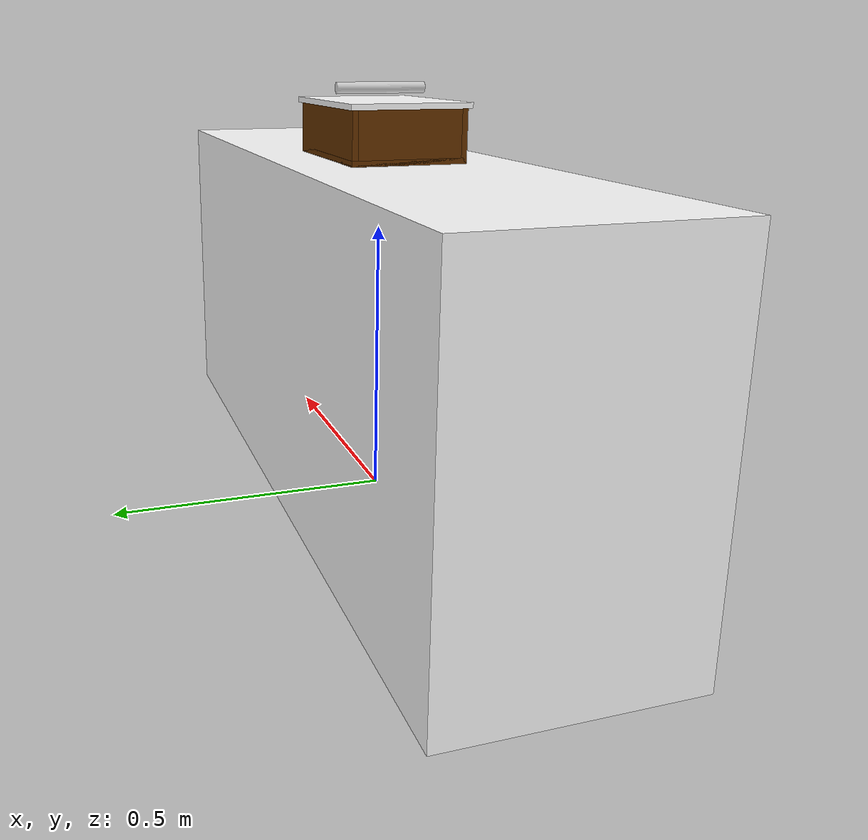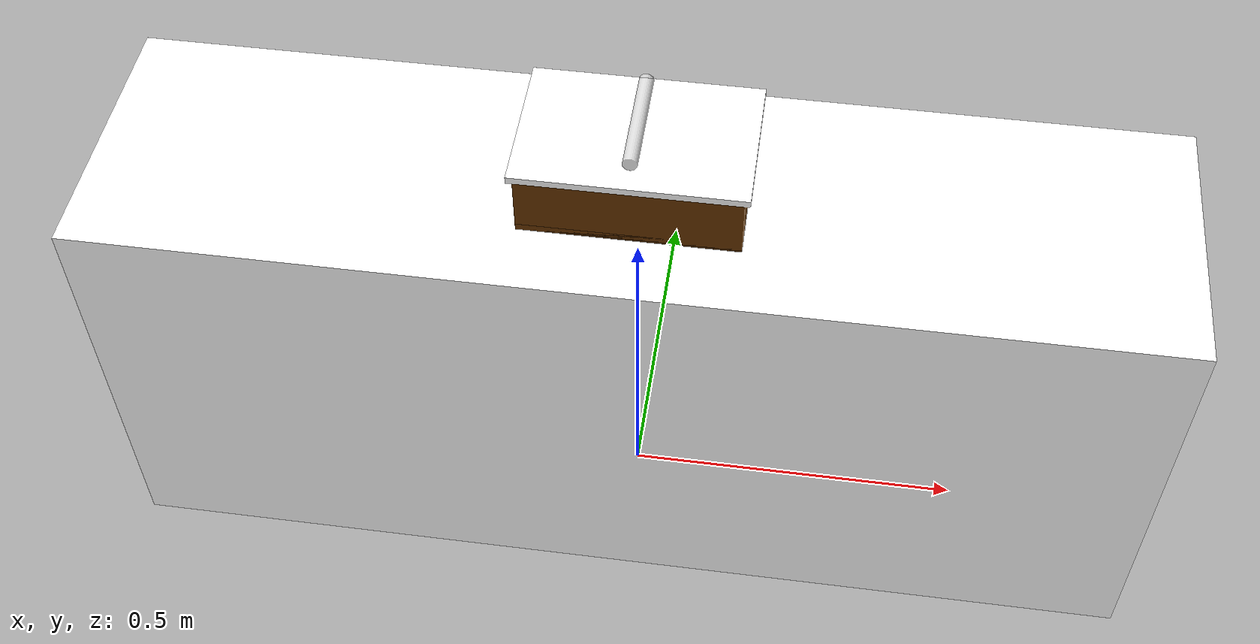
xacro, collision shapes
<?xml version="1.0"?>
<robot xmlns:xacro="http://www.ros.org/wiki/xacro" name="container_no_lid">

<xacro:include filename="container_common.xacro"/>

<link name="base_link">
  <inertial>
    <origin rpy="0 0 0" xyz="0 0 0"/>
    <mass value="0.0"/>
    <inertia ixx="1" ixy="0" ixz="0" iyy="1" iyz="0" izz="1"/>
  </inertial>
</link>

<link name="table_link">
  <contact>
    <lateral_friction value="1.0"/>
  </contact>
  <inertial>
    <origin rpy="0 0 0" xyz="0 0 0"/>
    <mass value="10.0"/>
    <inertia ixx="1" ixy="0" ixz="0" iyy="1" iyz="0" izz="1"/>
  </inertial>
  <visual>
    <origin rpy="0 0 0" xyz="0 0 0.6"/>
    <geometry>
      <mesh filename="table.obj" scale="1.5 0.4 0.05"/>
    </geometry>
    <material name="white">
      <color rgba="1 1 1 1"/>
    </material>
  </visual>
  <collision>
    <origin rpy="0 0 0" xyz="0 0 0.3125"/>
    <geometry>
      <box size="1.5 0.4 0.625"/>
    </geometry>
  </collision>
  <visual>
    <origin rpy="0 0 0" xyz="-0.65 -0.2 0.29"/>
    <geometry>
      <mesh filename="table.obj" scale="0.1 0.02 0.58"/>
    </geometry>
    <material name="framemat0"/>
  </visual>
  <visual>
    <origin rpy="0 0 0" xyz="-0.65 0.2 0.29"/>
    <geometry>
      <mesh filename="table.obj" scale="0.1 0.02 0.58"/>
    </geometry>
    <material name="framemat0"/>
  </visual>
  <visual>
    <origin rpy="0 0 0" xyz="0.65 -0.2 0.29"/>
    <geometry>
      <mesh filename="table.obj" scale="0.1 0.02 0.58"/>
    </geometry>
    <material name="framemat0"/>
  </visual>
  <visual>
    <origin rpy="0 0 0" xyz="0.65 0.2 0.29"/>
    <geometry>
      <mesh filename="table.obj" scale="0.1 0.02 0.58"/>
    </geometry>
  </visual>
</link>

<joint name="table_joint" type="fixed">
  <origin xyz="0 0 0" rpy="0 0 0"/>
  <parent link="base_link"/>
  <child link="table_link"/>
</joint>

<xacro:corpus prefix="frame" width="${total_width}" depth="${total_depth}" height="${total_height-wall_thickness}" wall_thickness="${wall_thickness}" color="dark_brown"/>
<joint name="frame_joint" type="fixed">
  <origin xyz="0 0 ${wall_thickness/2+0.625}" rpy="0 0 0"/>
  <parent link="table_link"/>
  <child link="frame_bottom_plane"/>
</joint>

<xacro:plane prefix="lid" width="${total_width*1.05}" depth="${total_depth*1.05}" thickness="${wall_thickness}" color="white"/>
<joint name="lid_joint" type="prismatic">
  <origin xyz="0 0 ${total_height-wall_thickness}" rpy="0 0 0"/>
  <parent link="frame_bottom_plane"/>
  <child link="lid_plane"/>
  <axis xyz="1 0 0"/>
  <dynamics damping="8.0"/>
  <limit lower="0.0" upper="${0.9*total_width}" effort="10.0" velocity="1.5"/>
</joint>

<xacro:handle length="${total_depth*0.8}"/>
<joint name="handle_joint" type="fixed">
  <origin xyz="0 0 ${wall_thickness/2+0.02}" rpy="${pi/2} ${3*pi/2} 0"/>
  <parent link="lid_plane"/>
  <child link="handle"/>
</joint>

<link name="door_handle_dummy_link">
    <!-- This dummy link is added s.t. the handle is the parent of some link and we can find the handle's index. -->
    <inertial>
        <origin rpy="0 0 0" xyz="0 0 0"/>
        <mass value="0.1"/>
        <inertia ixx="1" ixy="0" ixz="0" iyy="1" iyz="0" izz="1"/>
    </inertial>
</link>

<joint name="door_handle_dummy_joint" type="fixed">
    <origin xyz="0 0 0" rpy="0 0 0"/>
    <parent link="handle"/>
    <child link="door_handle_dummy_link"/>
</joint>

</robot>

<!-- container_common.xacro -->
<robot xmlns:xacro="http://www.ros.org/wiki/xacro" name="container_common">

<xacro:property name="wall_thickness" value="0.01"/>
<xacro:property name="total_height" value="0.1"/>
<xacro:property name="total_width" value="0.3"/>
<xacro:property name="total_depth" value="0.2"/>
<xacro:property name="lid_spacing" value="0.01"/>

<material name="white">
  <color rgba="1 1 1 1"/>
</material>
<material name="dark_brown">
  <color rgba="0.4 0.2 0.0 1"/>
</material>
<material name="light_brown">
  <color rgba="0.6 0.29 0.0 1"/>
</material>
<material name="silver">
  <color rgba="0.87 0.87 0.87 0.8"/>
</material>

<xacro:macro name="ori_geo" params="width depth height">
  <origin rpy="0 0 0" xyz="0 0 0"/>
  <geometry>
    <box size="${width} ${depth} ${height}"/>
  </geometry>
</xacro:macro>

<xacro:macro name="plane" params="prefix width depth thickness color">
  <link name="${prefix}_plane">
    <contact>
      <lateral_friction value="1.0"/>
    </contact>
    <inertial>
      <origin rpy="0 0 0" xyz="0 0 0"/>
       <mass value="0.02"/>
       <inertia ixx="1" ixy="0" ixz="0" iyy="1" iyz="0" izz="1"/>
    </inertial>
    <visual>
      <xacro:ori_geo width="${width}" depth="${depth}" height="${thickness}"/>
      <material name="${color}"/>
    </visual>
    <collision>
      <xacro:ori_geo width="${width}" depth="${depth}" height="${thickness}"/>
    </collision>
  </link>
</xacro:macro>

<xacro:macro name="corpus" params="prefix width depth height wall_thickness color">
  <xacro:plane prefix="${prefix}_bottom" width="${width}" depth="${depth}" thickness="${wall_thickness}" color="${color}"/>

  <xacro:plane prefix="${prefix}_back" width="${width}" depth="${height}" thickness="${wall_thickness}" color="${color}"/>
  <joint name="${prefix}_back_joint" type="fixed">
    <origin xyz="0 ${depth/2-wall_thickness/2} ${height/2-wall_thickness/2}" rpy="${pi/2} 0 0"/>
    <parent link="${prefix}_bottom_plane"/>
    <child link="${prefix}_back_plane"/>
  </joint>

  <xacro:plane prefix="${prefix}_left" width="${depth-2*wall_thickness}" depth="${height}" thickness="${wall_thickness}" color="${color}"/>
  <joint name="${prefix}_left_joint" type="fixed">
    <origin xyz="-${width/2-wall_thickness/2} 0 ${height/2-wall_thickness/2}" rpy="${pi/2} 0 ${pi/2}"/>
    <parent link="${prefix}_bottom_plane"/>
    <child link="${prefix}_left_plane"/>
  </joint>

  <xacro:plane prefix="${prefix}_right" width="${depth-2*wall_thickness}" depth="${height}" thickness="${wall_thickness}" color="${color}"/>
  <joint name="${prefix}_right_joint" type="fixed">
    <origin xyz="${width/2-wall_thickness/2} 0 ${height/2-wall_thickness/2}" rpy="${pi/2} 0 ${pi/2}"/>
    <parent link="${prefix}_bottom_plane"/>
    <child link="${prefix}_right_plane"/>
  </joint>

  <xacro:plane prefix="${prefix}_front" width="${width}" depth="${height}" thickness="${wall_thickness}" color="${color}"/>
  <joint name="${prefix}_front_joint" type="fixed">
    <origin xyz="0 -${depth/2-wall_thickness/2} ${height/2-wall_thickness/2}" rpy="${pi/2} 0 0"/>
    <parent link="${prefix}_bottom_plane"/>
    <child link="${prefix}_front_plane"/>
  </joint>
</xacro:macro>

<xacro:macro name="handle" params="length">
<link name="handle">
  <inertial>
    <origin rpy="0 0 0" xyz="0 0 0"/>
    <mass value="0.02"/>
    <inertia ixx="1" ixy="0" ixz="0" iyy="1" iyz="0" izz="1"/>
  </inertial>
  <collision>
    <origin rpy="0 0 0" xyz="0 0 0"/>
    <geometry>
      <cylinder radius="0.01" length="${length}"/>
    </geometry>
  </collision>
  <visual>
    <origin rpy="0 0 0" xyz="0 0 0"/>
    <geometry>
      <cylinder radius="0.01" length="${length}"/>
    </geometry>
    <material name="silver"/>
  </visual>
</link>
</xacro:macro>

</robot>
